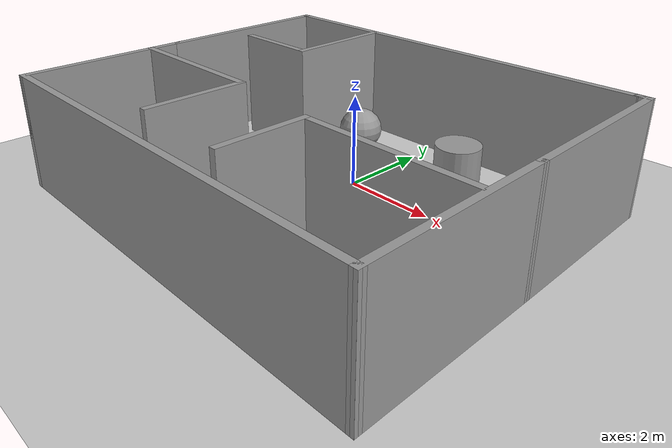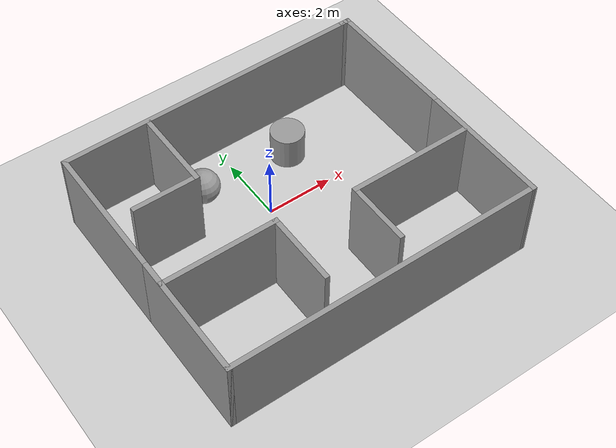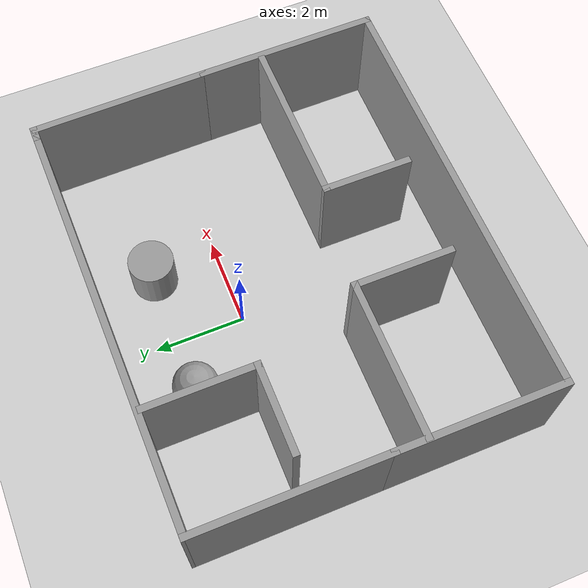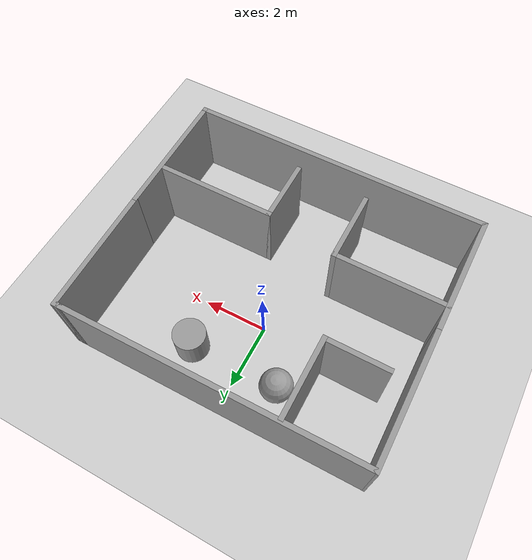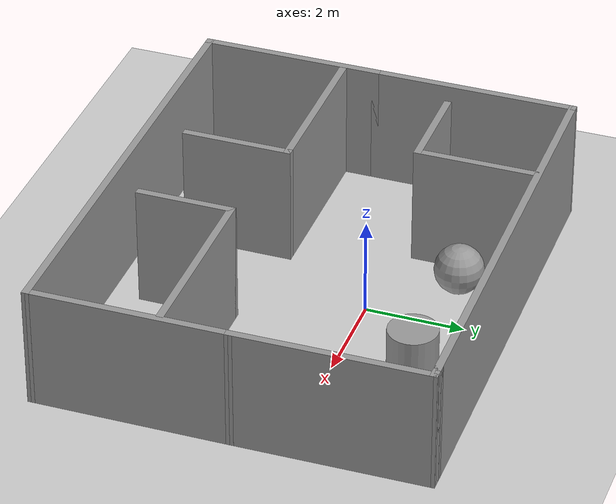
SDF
<sdf version="1.7">
 <world name="default">
  <light name="sun" type="directional">
   <pose>0 0 10 0 -0 0</pose>
   <diffuse>0.8 0.8 0.8 1</diffuse>
   <specular>0.2 0.2 0.2 1</specular>
   <attenuation>
    <range>1000</range>
    <constant>0.9</constant>
    <linear>0.01</linear>
    <quadratic>0.001</quadratic>
   </attenuation>
   <direction>-0.5 0.1 -0.9</direction>
   <spot><inner_angle>0</inner_angle><outer_angle>0</outer_angle><falloff>0</falloff></spot>
  </light>
  <model name="ground_plane">
   <static>1</static>
   <link name="link">
    <collision name="collision">
     <geometry><plane><normal>0 0 1</normal><size>100 100</size></plane></geometry>
     <surface><friction><ode><mu>100</mu><mu2>50</mu2></ode></friction></surface>
    </collision>
    <visual name="visual">
     <cast_shadows>0</cast_shadows>
     <geometry><plane><normal>0 0 1</normal><size>100 100</size></plane></geometry>
     <material>
      <script><uri>file://media/materials/scripts/gazebo.material</uri><name>Gazebo/Grey</name></script>
     </material>
    </visual>
   </link>
  </model>
  <gravity>0 0 -9.8</gravity>
  <magnetic_field>6e-06 2.3e-05 -4.2e-05</magnetic_field>
  <atmosphere type="adiabatic"/>
  <physics type="ode">
   <max_step_size>0.001</max_step_size>
   <real_time_factor>1</real_time_factor>
   <real_time_update_rate>1000</real_time_update_rate>
  </physics>
  <scene><ambient>0.4 0.4 0.4 1</ambient><background>0.7 0.7 0.7 1</background><shadows>1</shadows></scene>
  <audio><device>default</device></audio>
  <spherical_coordinates>
   <surface_model>EARTH_WGS84</surface_model>
   <latitude_deg>0</latitude_deg>
   <longitude_deg>0</longitude_deg>
   <elevation>0</elevation>
   <heading_deg>0</heading_deg>
  </spherical_coordinates>
  <model name="room">
   <pose>0.120896 -1.03187 0 0 -0 0</pose>
   <link name="Wall_11">
    <collision name="Wall_11_Collision">
     <geometry><box><size>0.15 0.15 2.5</size></box></geometry>
     <pose>0 0 1.25 0 -0 0</pose>
    </collision>
    <visual name="Wall_11_Visual">
     <pose>0 0 1.25 0 -0 0</pose>
     <geometry><box><size>0.15 0.15 2.5</size></box></geometry>
     <material>
      <script><uri>file://media/materials/scripts/gazebo.material</uri><name>Gazebo/Grey</name></script>
      <ambient>1 1 1 1</ambient>
     </material>
     <meta><layer>0</layer></meta>
    </visual>
    <pose>4.39868 3.89605 0 0 -0 0</pose>
   </link>
   <link name="Wall_12">
    <collision name="Wall_12_Collision">
     <geometry><box><size>0.25 0.15 2.5</size></box></geometry>
     <pose>0 0 1.25 0 -0 0</pose>
    </collision>
    <visual name="Wall_12_Visual">
     <pose>0 0 1.25 0 -0 0</pose>
     <geometry><box><size>0.25 0.15 2.5</size></box></geometry>
     <material>
      <script><uri>file://media/materials/scripts/gazebo.material</uri><name>Gazebo/Grey</name></script>
      <ambient>1 1 1 1</ambient>
     </material>
     <meta><layer>0</layer></meta>
    </visual>
    <pose>4.44868 3.89605 0 0 -0 0</pose>
   </link>
   <link name="Wall_13">
    <collision name="Wall_13_Collision">
     <geometry><box><size>0.25 0.15 2.5</size></box></geometry>
     <pose>0 0 1.25 0 -0 0</pose>
    </collision>
    <visual name="Wall_13_Visual">
     <pose>0 0 1.25 0 -0 0</pose>
     <geometry><box><size>0.25 0.15 2.5</size></box></geometry>
     <material>
      <script><uri>file://media/materials/scripts/gazebo.material</uri><name>Gazebo/Grey</name></script>
      <ambient>1 1 1 1</ambient>
     </material>
     <meta><layer>0</layer></meta>
    </visual>
    <pose>4.54868 3.89605 0 0 -0 0</pose>
   </link>
   <link name="Wall_14">
    <collision name="Wall_14_Collision">
     <geometry><box><size>4.00033 0.15 2.5</size></box></geometry>
     <pose>0 0 1.25 0 -0 0</pose>
    </collision>
    <visual name="Wall_14_Visual">
     <pose>0 0 1.25 0 -0 0</pose>
     <geometry><box><size>4.00033 0.15 2.5</size></box></geometry>
     <material>
      <script><uri>file://media/materials/scripts/gazebo.material</uri><name>Gazebo/Grey</name></script>
      <ambient>1 1 1 1</ambient>
     </material>
     <meta><layer>0</layer></meta>
    </visual>
    <pose>4.62368 1.97105 0 0 -0 -1.55781</pose>
   </link>
   <link name="Wall_16">
    <collision name="Wall_16_Collision">
     <geometry><box><size>2.5 0.15 2.5</size></box></geometry>
     <pose>0 0 1.25 0 -0 0</pose>
    </collision>
    <visual name="Wall_16_Visual">
     <pose>0 0 1.25 0 -0 0</pose>
     <geometry><box><size>2.5 0.15 2.5</size></box></geometry>
     <material>
      <script><uri>file://media/materials/scripts/gazebo.material</uri><name>Gazebo/Grey</name></script>
      <ambient>1 1 1 1</ambient>
     </material>
     <meta><layer>0</layer></meta>
    </visual>
    <pose>-2.15469 2.5789 0 0 -0 -1.5708</pose>
   </link>
   <link name="Wall_17">
    <collision name="Wall_17_Collision">
     <geometry><box><size>2 0.15 2.5</size></box></geometry>
     <pose>0 0 1.25 0 -0 0</pose>
    </collision>
    <visual name="Wall_17_Visual">
     <pose>0 0 1.25 0 -0 0</pose>
     <geometry><box><size>2 0.15 2.5</size></box></geometry>
     <material>
      <script><uri>file://media/materials/scripts/gazebo.material</uri><name>Gazebo/Grey</name></script>
      <ambient>1 1 1 1</ambient>
     </material>
     <meta><layer>0</layer></meta>
    </visual>
    <pose>-3.0797 1.4039 0 0 -0 3.14159</pose>
   </link>
   <link name="Wall_19">
    <collision name="Wall_19_Collision">
     <geometry><box><size>3.5 0.15 2.5</size></box></geometry>
     <pose>0 0 1.25 0 -0 0</pose>
    </collision>
    <visual name="Wall_19_Visual">
     <pose>0 0 1.25 0 -0 0</pose>
     <geometry><box><size>3.5 0.15 2.5</size></box></geometry>
     <material>
      <script><uri>file://media/materials/scripts/gazebo.material</uri><name>Gazebo/Grey</name></script>
      <ambient>1 1 1 1</ambient>
     </material>
     <meta><layer>0</layer></meta>
    </visual>
    <pose>-2.98179 -0.979963 0 0 -0 0</pose>
   </link>
   <link name="Wall_2">
    <collision name="Wall_2_Collision">
     <geometry><box><size>3.75 0.15 2.5</size></box></geometry>
     <pose>0 0 1.25 0 -0 0</pose>
    </collision>
    <visual name="Wall_2_Visual">
     <pose>0 0 1.25 0 -0 0</pose>
     <geometry><box><size>3.75 0.15 2.5</size></box></geometry>
     <material>
      <script><uri>file://media/materials/scripts/gazebo.material</uri><name>Gazebo/Grey</name></script>
      <ambient>1 1 1 1</ambient>
     </material>
     <meta><layer>0</layer></meta>
    </visual>
    <pose>-4.67487 -2.09652 0 0 -0 -1.5708</pose>
   </link>
   <link name="Wall_20">
    <collision name="Wall_20_Collision">
     <geometry><box><size>2.25 0.15 2.5</size></box></geometry>
     <pose>0 0 1.25 0 -0 0</pose>
    </collision>
    <visual name="Wall_20_Visual">
     <pose>0 0 1.25 0 -0 0</pose>
     <geometry><box><size>2.25 0.15 2.5</size></box></geometry>
     <material>
      <script><uri>file://media/materials/scripts/gazebo.material</uri><name>Gazebo/Grey</name></script>
      <ambient>1 1 1 1</ambient>
     </material>
     <meta><layer>0</layer></meta>
    </visual>
    <pose>-1.30679 -2.02996 0 0 -0 -1.5708</pose>
   </link>
   <link name="Wall_22">
    <collision name="Wall_22_Collision">
     <geometry><box><size>3.75 0.15 2.5</size></box></geometry>
     <pose>0 0 1.25 0 -0 0</pose>
    </collision>
    <visual name="Wall_22_Visual">
     <pose>0 0 1.25 0 -0 0</pose>
     <geometry><box><size>3.75 0.15 2.5</size></box></geometry>
     <material>
      <script><uri>file://media/materials/scripts/gazebo.material</uri><name>Gazebo/Grey</name></script>
      <ambient>1 1 1 1</ambient>
     </material>
     <meta><layer>0</layer></meta>
    </visual>
    <pose>2.74003 -1.31227 0 0 -0 0</pose>
   </link>
   <link name="Wall_24">
    <collision name="Wall_24_Collision">
     <geometry><box><size>2 0.15 2.5</size></box></geometry>
     <pose>0 0 1.25 0 -0 0</pose>
    </collision>
    <visual name="Wall_24_Visual">
     <pose>0 0 1.25 0 -0 0</pose>
     <geometry><box><size>2 0.15 2.5</size></box></geometry>
     <material>
      <script><uri>file://media/materials/scripts/gazebo.material</uri><name>Gazebo/Grey</name></script>
      <ambient>1 1 1 1</ambient>
     </material>
     <meta><layer>0</layer></meta>
    </visual>
    <pose>0.940026 -2.23727 0 0 -0 -1.5708</pose>
   </link>
   <link name="Wall_3">
    <collision name="Wall_3_Collision">
     <geometry><box><size>0.15 0.15 2.5</size></box></geometry>
     <pose>0 0 1.25 0 -0 0</pose>
    </collision>
    <visual name="Wall_3_Visual">
     <pose>0 0 1.25 0 -0 0</pose>
     <geometry><box><size>0.15 0.15 2.5</size></box></geometry>
     <material>
      <script><uri>file://media/materials/scripts/gazebo.material</uri><name>Gazebo/Grey</name></script>
      <ambient>1 1 1 1</ambient>
     </material>
     <meta><layer>0</layer></meta>
    </visual>
    <pose>-4.67487 -3.89652 0 0 -0 0</pose>
   </link>
   <link name="Wall_4">
    <collision name="Wall_4_Collision">
     <geometry><box><size>9.5 0.15 2.5</size></box></geometry>
     <pose>0 0 1.25 0 -0 0</pose>
    </collision>
    <visual name="Wall_4_Visual">
     <pose>0 0 1.25 0 -0 0</pose>
     <geometry><box><size>9.5 0.15 2.5</size></box></geometry>
     <material>
      <script><uri>file://media/materials/scripts/gazebo.material</uri><name>Gazebo/Grey</name></script>
      <ambient>1 1 1 1</ambient>
     </material>
     <meta><layer>0</layer></meta>
    </visual>
    <pose>0.00013 -3.89652 0 0 -0 0</pose>
   </link>
   <link name="Wall_5">
    <collision name="Wall_5_Collision">
     <geometry><box><size>4.09266 0.15 2.5</size></box></geometry>
     <pose>0 0 1.25 0 -0 0</pose>
    </collision>
    <visual name="Wall_5_Visual">
     <pose>0 0 1.25 0 -0 0</pose>
     <geometry><box><size>4.09266 0.15 2.5</size></box></geometry>
     <material>
      <script><uri>file://media/materials/scripts/gazebo.material</uri><name>Gazebo/Grey</name></script>
      <ambient>1 1 1 1</ambient>
     </material>
     <meta><layer>0</layer></meta>
    </visual>
    <pose>4.6619 -1.92523 0 0 -0 1.5775</pose>
   </link>
   <link name="Wall_7">
    <collision name="Wall_7_Collision">
     <geometry><box><size>4.25 0.15 2.5</size></box></geometry>
     <pose>0 0 1.25 0 -0 0</pose>
    </collision>
    <visual name="Wall_7_Visual">
     <pose>0 0 1.25 0 -0 0</pose>
     <geometry><box><size>4.25 0.15 2.5</size></box></geometry>
     <material>
      <script><uri>file://media/materials/scripts/gazebo.material</uri><name>Gazebo/Grey</name></script>
      <ambient>1 1 1 1</ambient>
     </material>
     <meta><layer>0</layer></meta>
    </visual>
    <pose>-4.67487 1.75348 0 0 -0 1.5708</pose>
   </link>
   <link name="Wall_8">
    <collision name="Wall_8_Collision">
     <geometry><box><size>9.22402 0.15 2.5</size></box></geometry>
     <pose>0 0 1.25 0 -0 0</pose>
    </collision>
    <visual name="Wall_8_Visual">
     <pose>0 0 1.25 0 -0 0</pose>
     <geometry><box><size>9.22402 0.15 2.5</size></box></geometry>
     <material>
      <script><uri>file://media/materials/scripts/gazebo.material</uri><name>Gazebo/Grey</name></script>
      <ambient>1 1 1 1</ambient>
     </material>
     <meta><layer>0</layer></meta>
    </visual>
    <pose>-0.138095 3.84977 0 0 -0 0.010202</pose>
   </link>
   <static>1</static>
  </model>
  <model name="unit_cylinder">
   <pose>1.61105 1.4801 0.499993 -3e-06 -4e-06 -0</pose>
   <link name="link">
    <inertial>
     <mass>1</mass>
     <inertia><ixx>0.145833</ixx><ixy>0</ixy><ixz>0</ixz><iyy>0.145833</iyy><iyz>0</iyz><izz>0.125</izz></inertia>
    </inertial>
    <collision name="collision">
     <geometry><cylinder><radius>0.5</radius><length>1</length></cylinder></geometry>
    </collision>
    <visual name="visual">
     <geometry><cylinder><radius>0.5</radius><length>1</length></cylinder></geometry>
     <material>
      <script><name>Gazebo/Grey</name><uri>file://media/materials/scripts/gazebo.material</uri></script>
     </material>
    </visual>
   </link>
  </model>
  <model name="unit_sphere">
   <pose>-1.23721 1.5082 0.5 0 -0 0</pose>
   <link name="link">
    <inertial>
     <mass>1</mass>
     <inertia><ixx>0.1</ixx><ixy>0</ixy><ixz>0</ixz><iyy>0.1</iyy><iyz>0</iyz><izz>0.1</izz></inertia>
    </inertial>
    <collision name="collision"><geometry><sphere><radius>0.5</radius></sphere></geometry></collision>
    <visual name="visual">
     <geometry><sphere><radius>0.5</radius></sphere></geometry>
     <material>
      <script><name>Gazebo/Grey</name><uri>file://media/materials/scripts/gazebo.material</uri></script>
     </material>
    </visual>
   </link>
  </model>
 </world>
</sdf>
